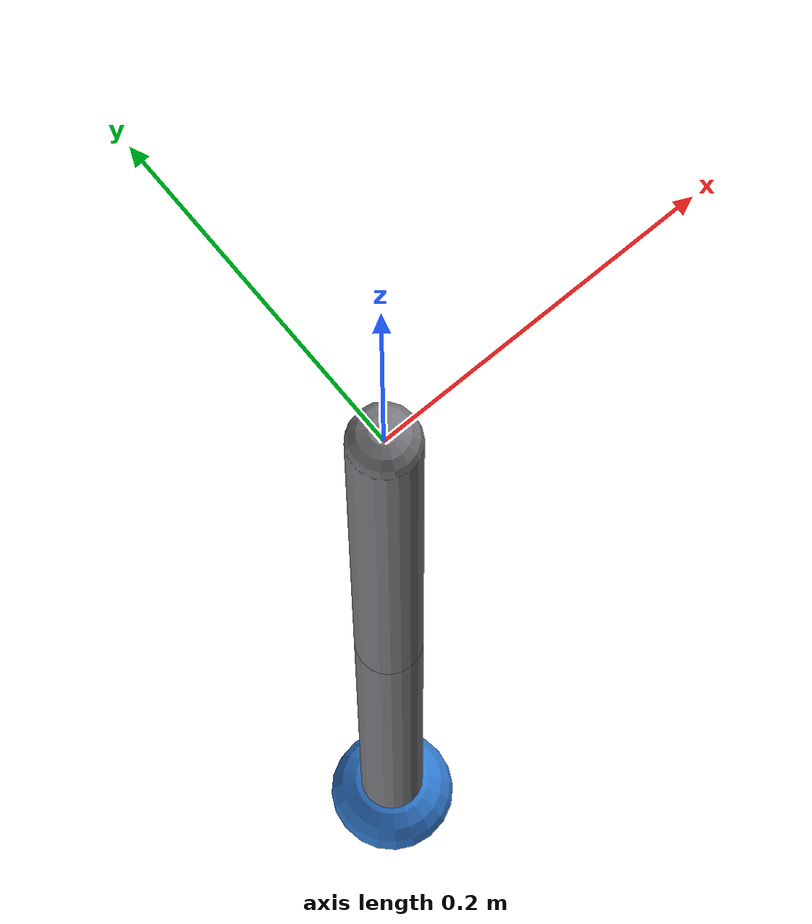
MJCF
<mujoco model="subtree_com">
    <compiler angle="radian"/>
    <option gravity="0 0 -9.81" timestep="0.001" integrator="RK4"/>

    <default>
        <geom contype="0" conaffinity="0"/>
    </default>

    <worldbody>
        <body name="upper" pos="0 0 0">
            <joint name="shoulder" type="hinge" axis="0 1 0" damping="0"/>
            <inertial pos="0 0 -0.2" mass="1.0" diaginertia="0.01 0.01 0.01"/>
            <geom name="upper_rod" type="capsule" size="0.02"
                  fromto="0 0 0  0 0 -0.4" rgba="0.48 0.48 0.50 1"/>
            <body name="lower" pos="0 0 -0.4">
                <joint name="elbow" type="hinge" axis="0 1 0" damping="0"/>
                <inertial pos="0 0 -0.2" mass="1.0" diaginertia="0.01 0.01 0.01"/>
                <geom name="lower_rod" type="capsule" size="0.02"
                      fromto="0 0 0  0 0 -0.4" rgba="0.48 0.48 0.50 1"/>
                <geom name="lower_tip" type="sphere" size="0.04"
                      pos="0 0 -0.4" rgba="0.2 0.5 0.85 1"/>
            </body>
        </body>
    </worldbody>

    <sensor>
        <subtreecom name="com" body="upper"/>
    </sensor>
</mujoco>
